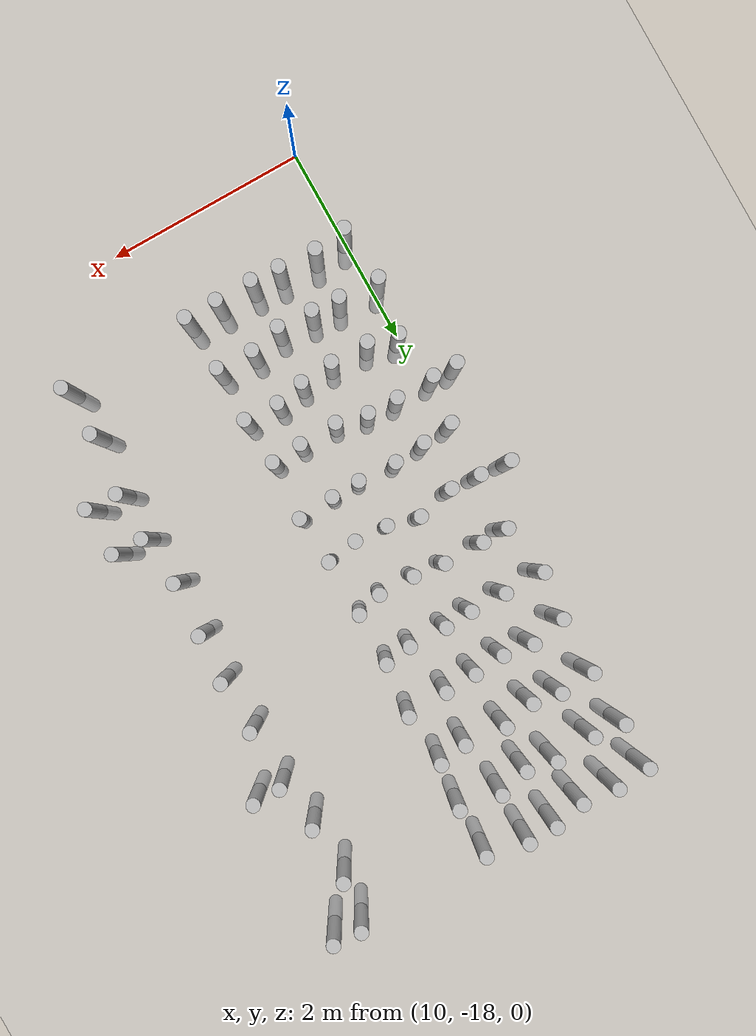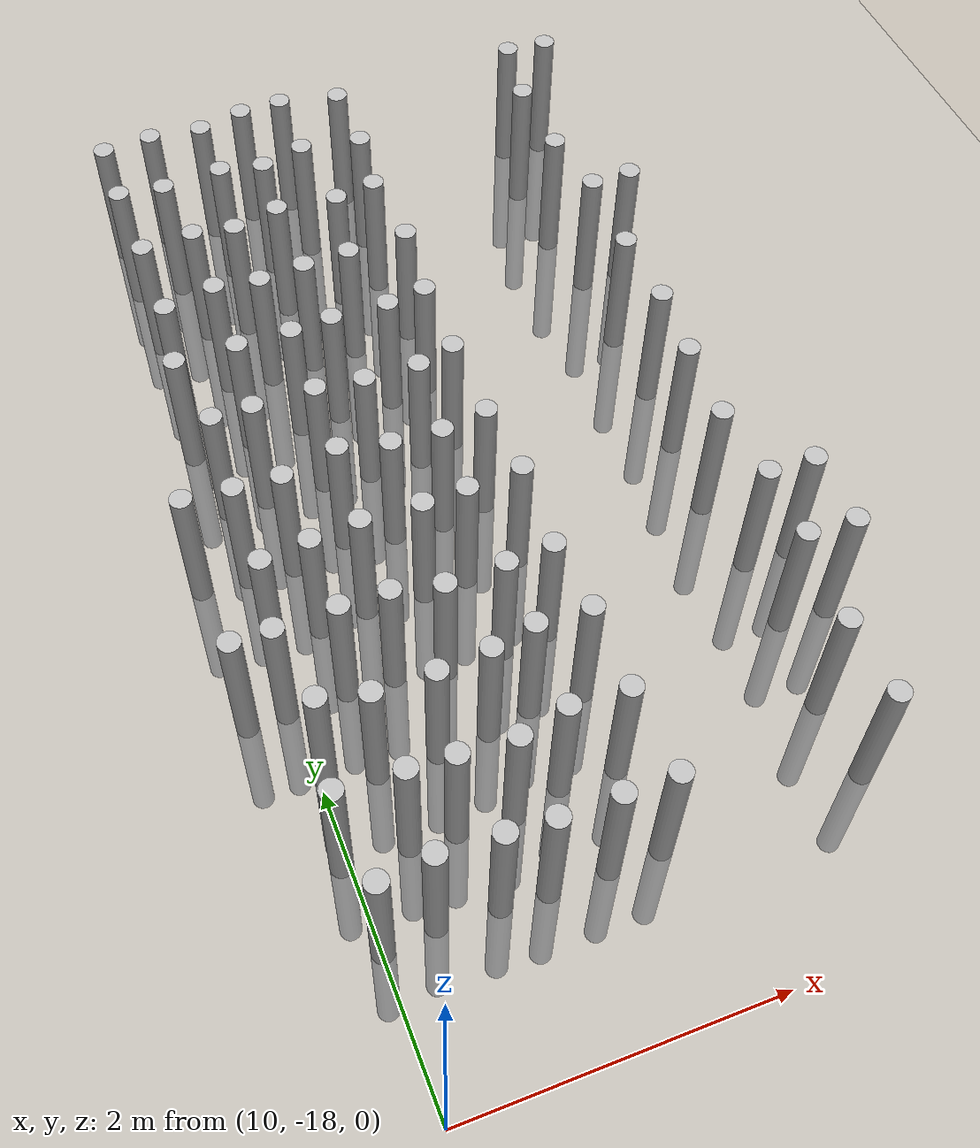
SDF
<sdf version="1.7">
 <world name="farmland_world">
  <model name="ground_plane">
   <static>1</static>
   <link name="link">
    <collision name="collision">
     <geometry><plane><normal>0 0 1</normal><size>40.0 40.0</size></plane></geometry>
     <surface><friction><ode><mu>100</mu><mu2>50</mu2></ode></friction></surface>
    </collision>
    <visual name="visual">
     <cast_shadows>0</cast_shadows>
     <geometry><plane><normal>0 0 1</normal><size>40.0 40.0</size></plane></geometry>
     <material>
      <script><uri>file://media/materials/scripts/gazebo.material</uri><name>Gazebo/Grey</name></script>
     </material>
    </visual>
   </link>
  </model>
  <model name="tree_3_444">
   <static>1</static>
   <link name="link">
    <collision name="collision">
     <geometry><cylinder><radius>0.07</radius><length>2.0</length></cylinder></geometry>
     <surface><friction><ode><mu>100</mu><mu2>50</mu2></ode></friction></surface>
    </collision>
    <visual name="visual">
     <geometry><cylinder><radius>0.07</radius><length>2.0</length></cylinder></geometry>
    </visual>
   </link>
   <pose>9.71806890942559 -14.407326169334242 0 0 0 0</pose>
  </model>
  <model name="tree_3_446">
   <static>1</static>
   <link name="link">
    <collision name="collision">
     <geometry><cylinder><radius>0.07</radius><length>2.0</length></cylinder></geometry>
     <surface><friction><ode><mu>100</mu><mu2>50</mu2></ode></friction></surface>
    </collision>
    <visual name="visual">
     <geometry><cylinder><radius>0.07</radius><length>2.0</length></cylinder></geometry>
    </visual>
   </link>
   <pose>9.711560196949451 -15.432783776333466 0 0 0 0</pose>
  </model>
  <model name="tree_3_468">
   <static>1</static>
   <link name="link">
    <collision name="collision">
     <geometry><cylinder><radius>0.07</radius><length>2.0</length></cylinder></geometry>
     <surface><friction><ode><mu>100</mu><mu2>50</mu2></ode></friction></surface>
    </collision>
    <visual name="visual">
     <geometry><cylinder><radius>0.07</radius><length>2.0</length></cylinder></geometry>
    </visual>
   </link>
   <pose>10.003537658752895 -11.329767096018102 0 0 0 0</pose>
  </model>
  <model name="tree_3_469">
   <static>1</static>
   <link name="link">
    <collision name="collision">
     <geometry><cylinder><radius>0.07</radius><length>2.0</length></cylinder></geometry>
     <surface><friction><ode><mu>100</mu><mu2>50</mu2></ode></friction></surface>
    </collision>
    <visual name="visual">
     <geometry><cylinder><radius>0.07</radius><length>2.0</length></cylinder></geometry>
    </visual>
   </link>
   <pose>9.995978710981182 -11.786096874504736 0 0 0 0</pose>
  </model>
  <model name="tree_3_470">
   <static>1</static>
   <link name="link">
    <collision name="collision">
     <geometry><cylinder><radius>0.07</radius><length>2.0</length></cylinder></geometry>
     <surface><friction><ode><mu>100</mu><mu2>50</mu2></ode></friction></surface>
    </collision>
    <visual name="visual">
     <geometry><cylinder><radius>0.07</radius><length>2.0</length></cylinder></geometry>
    </visual>
   </link>
   <pose>10.017082627979574 -12.339876255355179 0 0 0 0</pose>
  </model>
  <model name="tree_3_471">
   <static>1</static>
   <link name="link">
    <collision name="collision">
     <geometry><cylinder><radius>0.07</radius><length>2.0</length></cylinder></geometry>
     <surface><friction><ode><mu>100</mu><mu2>50</mu2></ode></friction></surface>
    </collision>
    <visual name="visual">
     <geometry><cylinder><radius>0.07</radius><length>2.0</length></cylinder></geometry>
    </visual>
   </link>
   <pose>10.01881479105558 -12.906315925940971 0 0 0 0</pose>
  </model>
  <model name="tree_3_472">
   <static>1</static>
   <link name="link">
    <collision name="collision">
     <geometry><cylinder><radius>0.07</radius><length>2.0</length></cylinder></geometry>
     <surface><friction><ode><mu>100</mu><mu2>50</mu2></ode></friction></surface>
    </collision>
    <visual name="visual">
     <geometry><cylinder><radius>0.07</radius><length>2.0</length></cylinder></geometry>
    </visual>
   </link>
   <pose>9.957768395754783 -13.364970226334474 0 0 0 0</pose>
  </model>
  <model name="tree_3_473">
   <static>1</static>
   <link name="link">
    <collision name="collision">
     <geometry><cylinder><radius>0.07</radius><length>2.0</length></cylinder></geometry>
     <surface><friction><ode><mu>100</mu><mu2>50</mu2></ode></friction></surface>
    </collision>
    <visual name="visual">
     <geometry><cylinder><radius>0.07</radius><length>2.0</length></cylinder></geometry>
    </visual>
   </link>
   <pose>10.049976861707478 -13.878623129617107 0 0 0 0</pose>
  </model>
  <model name="tree_3_474">
   <static>1</static>
   <link name="link">
    <collision name="collision">
     <geometry><cylinder><radius>0.07</radius><length>2.0</length></cylinder></geometry>
     <surface><friction><ode><mu>100</mu><mu2>50</mu2></ode></friction></surface>
    </collision>
    <visual name="visual">
     <geometry><cylinder><radius>0.07</radius><length>2.0</length></cylinder></geometry>
    </visual>
   </link>
   <pose>10.023209837327732 -14.431447521194377 0 0 0 0</pose>
  </model>
  <model name="tree_3_475">
   <static>1</static>
   <link name="link">
    <collision name="collision">
     <geometry><cylinder><radius>0.07</radius><length>2.0</length></cylinder></geometry>
     <surface><friction><ode><mu>100</mu><mu2>50</mu2></ode></friction></surface>
    </collision>
    <visual name="visual">
     <geometry><cylinder><radius>0.07</radius><length>2.0</length></cylinder></geometry>
    </visual>
   </link>
   <pose>10.025530881395827 -14.975288594109848 0 0 0 0</pose>
  </model>
  <model name="tree_3_476">
   <static>1</static>
   <link name="link">
    <collision name="collision">
     <geometry><cylinder><radius>0.07</radius><length>2.0</length></cylinder></geometry>
     <surface><friction><ode><mu>100</mu><mu2>50</mu2></ode></friction></surface>
    </collision>
    <visual name="visual">
     <geometry><cylinder><radius>0.07</radius><length>2.0</length></cylinder></geometry>
    </visual>
   </link>
   <pose>9.95917431258349 -15.431483574233019 0 0 0 0</pose>
  </model>
  <model name="tree_3_477">
   <static>1</static>
   <link name="link">
    <collision name="collision">
     <geometry><cylinder><radius>0.07</radius><length>2.0</length></cylinder></geometry>
     <surface><friction><ode><mu>100</mu><mu2>50</mu2></ode></friction></surface>
    </collision>
    <visual name="visual">
     <geometry><cylinder><radius>0.07</radius><length>2.0</length></cylinder></geometry>
    </visual>
   </link>
   <pose>10.04451284538513 -15.922026359931321 0 0 0 0</pose>
  </model>
  <model name="tree_3_478">
   <static>1</static>
   <link name="link">
    <collision name="collision">
     <geometry><cylinder><radius>0.07</radius><length>2.0</length></cylinder></geometry>
     <surface><friction><ode><mu>100</mu><mu2>50</mu2></ode></friction></surface>
    </collision>
    <visual name="visual">
     <geometry><cylinder><radius>0.07</radius><length>2.0</length></cylinder></geometry>
    </visual>
   </link>
   <pose>9.955804929519918 -16.46301985570231 0 0 0 0</pose>
  </model>
  <model name="tree_3_479">
   <static>1</static>
   <link name="link">
    <collision name="collision">
     <geometry><cylinder><radius>0.07</radius><length>2.0</length></cylinder></geometry>
     <surface><friction><ode><mu>100</mu><mu2>50</mu2></ode></friction></surface>
    </collision>
    <visual name="visual">
     <geometry><cylinder><radius>0.07</radius><length>2.0</length></cylinder></geometry>
    </visual>
   </link>
   <pose>10.009402851483868 -17.009246043800758 0 0 0 0</pose>
  </model>
  <model name="tree_3_498">
   <static>1</static>
   <link name="link">
    <collision name="collision">
     <geometry><cylinder><radius>0.07</radius><length>2.0</length></cylinder></geometry>
     <surface><friction><ode><mu>100</mu><mu2>50</mu2></ode></friction></surface>
    </collision>
    <visual name="visual">
     <geometry><cylinder><radius>0.07</radius><length>2.0</length></cylinder></geometry>
    </visual>
   </link>
   <pose>10.33894609648866 -11.302975191978183 0 0 0 0</pose>
  </model>
  <model name="tree_3_499">
   <static>1</static>
   <link name="link">
    <collision name="collision">
     <geometry><cylinder><radius>0.07</radius><length>2.0</length></cylinder></geometry>
     <surface><friction><ode><mu>100</mu><mu2>50</mu2></ode></friction></surface>
    </collision>
    <visual name="visual">
     <geometry><cylinder><radius>0.07</radius><length>2.0</length></cylinder></geometry>
    </visual>
   </link>
   <pose>10.297509967706294 -11.825122006668854 0 0 0 0</pose>
  </model>
  <model name="tree_3_500">
   <static>1</static>
   <link name="link">
    <collision name="collision">
     <geometry><cylinder><radius>0.07</radius><length>2.0</length></cylinder></geometry>
     <surface><friction><ode><mu>100</mu><mu2>50</mu2></ode></friction></surface>
    </collision>
    <visual name="visual">
     <geometry><cylinder><radius>0.07</radius><length>2.0</length></cylinder></geometry>
    </visual>
   </link>
   <pose>10.36316263589027 -12.321332924497236 0 0 0 0</pose>
  </model>
  <model name="tree_3_501">
   <static>1</static>
   <link name="link">
    <collision name="collision">
     <geometry><cylinder><radius>0.07</radius><length>2.0</length></cylinder></geometry>
     <surface><friction><ode><mu>100</mu><mu2>50</mu2></ode></friction></surface>
    </collision>
    <visual name="visual">
     <geometry><cylinder><radius>0.07</radius><length>2.0</length></cylinder></geometry>
    </visual>
   </link>
   <pose>10.363410427684398 -12.837710706759607 0 0 0 0</pose>
  </model>
  <model name="tree_3_502">
   <static>1</static>
   <link name="link">
    <collision name="collision">
     <geometry><cylinder><radius>0.07</radius><length>2.0</length></cylinder></geometry>
     <surface><friction><ode><mu>100</mu><mu2>50</mu2></ode></friction></surface>
    </collision>
    <visual name="visual">
     <geometry><cylinder><radius>0.07</radius><length>2.0</length></cylinder></geometry>
    </visual>
   </link>
   <pose>10.361540540127775 -13.370075875086394 0 0 0 0</pose>
  </model>
  <model name="tree_3_503">
   <static>1</static>
   <link name="link">
    <collision name="collision">
     <geometry><cylinder><radius>0.07</radius><length>2.0</length></cylinder></geometry>
     <surface><friction><ode><mu>100</mu><mu2>50</mu2></ode></friction></surface>
    </collision>
    <visual name="visual">
     <geometry><cylinder><radius>0.07</radius><length>2.0</length></cylinder></geometry>
    </visual>
   </link>
   <pose>10.31073996327706 -13.878181440496498 0 0 0 0</pose>
  </model>
  <model name="tree_3_504">
   <static>1</static>
   <link name="link">
    <collision name="collision">
     <geometry><cylinder><radius>0.07</radius><length>2.0</length></cylinder></geometry>
     <surface><friction><ode><mu>100</mu><mu2>50</mu2></ode></friction></surface>
    </collision>
    <visual name="visual">
     <geometry><cylinder><radius>0.07</radius><length>2.0</length></cylinder></geometry>
    </visual>
   </link>
   <pose>10.320666112820755 -14.449300493469073 0 0 0 0</pose>
  </model>
  <model name="tree_3_505">
   <static>1</static>
   <link name="link">
    <collision name="collision">
     <geometry><cylinder><radius>0.07</radius><length>2.0</length></cylinder></geometry>
     <surface><friction><ode><mu>100</mu><mu2>50</mu2></ode></friction></surface>
    </collision>
    <visual name="visual">
     <geometry><cylinder><radius>0.07</radius><length>2.0</length></cylinder></geometry>
    </visual>
   </link>
   <pose>10.333509514505277 -14.940274618923805 0 0 0 0</pose>
  </model>
  <model name="tree_3_506">
   <static>1</static>
   <link name="link">
    <collision name="collision">
     <geometry><cylinder><radius>0.07</radius><length>2.0</length></cylinder></geometry>
     <surface><friction><ode><mu>100</mu><mu2>50</mu2></ode></friction></surface>
    </collision>
    <visual name="visual">
     <geometry><cylinder><radius>0.07</radius><length>2.0</length></cylinder></geometry>
    </visual>
   </link>
   <pose>10.345513364410582 -15.419362076822324 0 0 0 0</pose>
  </model>
  <model name="tree_3_507">
   <static>1</static>
   <link name="link">
    <collision name="collision">
     <geometry><cylinder><radius>0.07</radius><length>2.0</length></cylinder></geometry>
     <surface><friction><ode><mu>100</mu><mu2>50</mu2></ode></friction></surface>
    </collision>
    <visual name="visual">
     <geometry><cylinder><radius>0.07</radius><length>2.0</length></cylinder></geometry>
    </visual>
   </link>
   <pose>10.3350017216774 -15.99816854349382 0 0 0 0</pose>
  </model>
  <model name="tree_3_508">
   <static>1</static>
   <link name="link">
    <collision name="collision">
     <geometry><cylinder><radius>0.07</radius><length>2.0</length></cylinder></geometry>
     <surface><friction><ode><mu>100</mu><mu2>50</mu2></ode></friction></surface>
    </collision>
    <visual name="visual">
     <geometry><cylinder><radius>0.07</radius><length>2.0</length></cylinder></geometry>
    </visual>
   </link>
   <pose>10.357720333693432 -16.484490871346463 0 0 0 0</pose>
  </model>
  <model name="tree_3_509">
   <static>1</static>
   <link name="link">
    <collision name="collision">
     <geometry><cylinder><radius>0.07</radius><length>2.0</length></cylinder></geometry>
     <surface><friction><ode><mu>100</mu><mu2>50</mu2></ode></friction></surface>
    </collision>
    <visual name="visual">
     <geometry><cylinder><radius>0.07</radius><length>2.0</length></cylinder></geometry>
    </visual>
   </link>
   <pose>10.333387708578263 -16.97504436359922 0 0 0 0</pose>
  </model>
  <model name="tree_3_528">
   <static>1</static>
   <link name="link">
    <collision name="collision">
     <geometry><cylinder><radius>0.07</radius><length>2.0</length></cylinder></geometry>
     <surface><friction><ode><mu>100</mu><mu2>50</mu2></ode></friction></surface>
    </collision>
    <visual name="visual">
     <geometry><cylinder><radius>0.07</radius><length>2.0</length></cylinder></geometry>
    </visual>
   </link>
   <pose>10.692143860619804 -11.343376843280295 0 0 0 0</pose>
  </model>
  <model name="tree_3_529">
   <static>1</static>
   <link name="link">
    <collision name="collision">
     <geometry><cylinder><radius>0.07</radius><length>2.0</length></cylinder></geometry>
     <surface><friction><ode><mu>100</mu><mu2>50</mu2></ode></friction></surface>
    </collision>
    <visual name="visual">
     <geometry><cylinder><radius>0.07</radius><length>2.0</length></cylinder></geometry>
    </visual>
   </link>
   <pose>10.704981614415079 -11.796466078481322 0 0 0 0</pose>
  </model>
  <model name="tree_3_530">
   <static>1</static>
   <link name="link">
    <collision name="collision">
     <geometry><cylinder><radius>0.07</radius><length>2.0</length></cylinder></geometry>
     <surface><friction><ode><mu>100</mu><mu2>50</mu2></ode></friction></surface>
    </collision>
    <visual name="visual">
     <geometry><cylinder><radius>0.07</radius><length>2.0</length></cylinder></geometry>
    </visual>
   </link>
   <pose>10.639592767230468 -12.368667238458682 0 0 0 0</pose>
  </model>
  <model name="tree_3_531">
   <static>1</static>
   <link name="link">
    <collision name="collision">
     <geometry><cylinder><radius>0.07</radius><length>2.0</length></cylinder></geometry>
     <surface><friction><ode><mu>100</mu><mu2>50</mu2></ode></friction></surface>
    </collision>
    <visual name="visual">
     <geometry><cylinder><radius>0.07</radius><length>2.0</length></cylinder></geometry>
    </visual>
   </link>
   <pose>10.65920712658359 -12.884964713417741 0 0 0 0</pose>
  </model>
  <model name="tree_3_532">
   <static>1</static>
   <link name="link">
    <collision name="collision">
     <geometry><cylinder><radius>0.07</radius><length>2.0</length></cylinder></geometry>
     <surface><friction><ode><mu>100</mu><mu2>50</mu2></ode></friction></surface>
    </collision>
    <visual name="visual">
     <geometry><cylinder><radius>0.07</radius><length>2.0</length></cylinder></geometry>
    </visual>
   </link>
   <pose>10.715561784467207 -13.379422154926198 0 0 0 0</pose>
  </model>
  <model name="tree_3_533">
   <static>1</static>
   <link name="link">
    <collision name="collision">
     <geometry><cylinder><radius>0.07</radius><length>2.0</length></cylinder></geometry>
     <surface><friction><ode><mu>100</mu><mu2>50</mu2></ode></friction></surface>
    </collision>
    <visual name="visual">
     <geometry><cylinder><radius>0.07</radius><length>2.0</length></cylinder></geometry>
    </visual>
   </link>
   <pose>10.71059425265956 -13.882163198829856 0 0 0 0</pose>
  </model>
  <model name="tree_3_534">
   <static>1</static>
   <link name="link">
    <collision name="collision">
     <geometry><cylinder><radius>0.07</radius><length>2.0</length></cylinder></geometry>
     <surface><friction><ode><mu>100</mu><mu2>50</mu2></ode></friction></surface>
    </collision>
    <visual name="visual">
     <geometry><cylinder><radius>0.07</radius><length>2.0</length></cylinder></geometry>
    </visual>
   </link>
   <pose>10.690863453017835 -14.365591385801753 0 0 0 0</pose>
  </model>
  <model name="tree_3_535">
   <static>1</static>
   <link name="link">
    <collision name="collision">
     <geometry><cylinder><radius>0.07</radius><length>2.0</length></cylinder></geometry>
     <surface><friction><ode><mu>100</mu><mu2>50</mu2></ode></friction></surface>
    </collision>
    <visual name="visual">
     <geometry><cylinder><radius>0.07</radius><length>2.0</length></cylinder></geometry>
    </visual>
   </link>
   <pose>10.647093178068982 -14.912311834139604 0 0 0 0</pose>
  </model>
  <model name="tree_3_536">
   <static>1</static>
   <link name="link">
    <collision name="collision">
     <geometry><cylinder><radius>0.07</radius><length>2.0</length></cylinder></geometry>
     <surface><friction><ode><mu>100</mu><mu2>50</mu2></ode></friction></surface>
    </collision>
    <visual name="visual">
     <geometry><cylinder><radius>0.07</radius><length>2.0</length></cylinder></geometry>
    </visual>
   </link>
   <pose>10.647662996774855 -15.427349942697706 0 0 0 0</pose>
  </model>
  <model name="tree_3_537">
   <static>1</static>
   <link name="link">
    <collision name="collision">
     <geometry><cylinder><radius>0.07</radius><length>2.0</length></cylinder></geometry>
     <surface><friction><ode><mu>100</mu><mu2>50</mu2></ode></friction></surface>
    </collision>
    <visual name="visual">
     <geometry><cylinder><radius>0.07</radius><length>2.0</length></cylinder></geometry>
    </visual>
   </link>
   <pose>10.71225038911826 -16.001081513195565 0 0 0 0</pose>
  </model>
  <model name="tree_3_538">
   <static>1</static>
   <link name="link">
    <collision name="collision">
     <geometry><cylinder><radius>0.07</radius><length>2.0</length></cylinder></geometry>
     <surface><friction><ode><mu>100</mu><mu2>50</mu2></ode></friction></surface>
    </collision>
    <visual name="visual">
     <geometry><cylinder><radius>0.07</radius><length>2.0</length></cylinder></geometry>
    </visual>
   </link>
   <pose>10.636111390177035 -16.50164192502147 0 0 0 0</pose>
  </model>
  <model name="tree_3_539">
   <static>1</static>
   <link name="link">
    <collision name="collision">
     <geometry><cylinder><radius>0.07</radius><length>2.0</length></cylinder></geometry>
     <surface><friction><ode><mu>100</mu><mu2>50</mu2></ode></friction></surface>
    </collision>
    <visual name="visual">
     <geometry><cylinder><radius>0.07</radius><length>2.0</length></cylinder></geometry>
    </visual>
   </link>
   <pose>10.70558739581658 -16.997373226770648 0 0 0 0</pose>
  </model>
  <model name="tree_3_558">
   <static>1</static>
   <link name="link">
    <collision name="collision">
     <geometry><cylinder><radius>0.07</radius><length>2.0</length></cylinder></geometry>
     <surface><friction><ode><mu>100</mu><mu2>50</mu2></ode></friction></surface>
    </collision>
    <visual name="visual">
     <geometry><cylinder><radius>0.07</radius><length>2.0</length></cylinder></geometry>
    </visual>
   </link>
   <pose>11.005011579467332 -11.277034669835407 0 0 0 0</pose>
  </model>
  <model name="tree_3_559">
   <static>1</static>
   <link name="link">
    <collision name="collision">
     <geometry><cylinder><radius>0.07</radius><length>2.0</length></cylinder></geometry>
     <surface><friction><ode><mu>100</mu><mu2>50</mu2></ode></friction></surface>
    </collision>
    <visual name="visual">
     <geometry><cylinder><radius>0.07</radius><length>2.0</length></cylinder></geometry>
    </visual>
   </link>
   <pose>10.994471073875985 -11.858710326046126 0 0 0 0</pose>
  </model>
  <model name="tree_3_560">
   <static>1</static>
   <link name="link">
    <collision name="collision">
     <geometry><cylinder><radius>0.07</radius><length>2.0</length></cylinder></geometry>
     <surface><friction><ode><mu>100</mu><mu2>50</mu2></ode></friction></surface>
    </collision>
    <visual name="visual">
     <geometry><cylinder><radius>0.07</radius><length>2.0</length></cylinder></geometry>
    </visual>
   </link>
   <pose>10.95728698454659 -12.297134483807497 0 0 0 0</pose>
  </model>
  <model name="tree_3_561">
   <static>1</static>
   <link name="link">
    <collision name="collision">
     <geometry><cylinder><radius>0.07</radius><length>2.0</length></cylinder></geometry>
     <surface><friction><ode><mu>100</mu><mu2>50</mu2></ode></friction></surface>
    </collision>
    <visual name="visual">
     <geometry><cylinder><radius>0.07</radius><length>2.0</length></cylinder></geometry>
    </visual>
   </link>
   <pose>10.965736558689766 -12.860132901302258 0 0 0 0</pose>
  </model>
  <model name="tree_3_562">
   <static>1</static>
   <link name="link">
    <collision name="collision">
     <geometry><cylinder><radius>0.07</radius><length>2.0</length></cylinder></geometry>
     <surface><friction><ode><mu>100</mu><mu2>50</mu2></ode></friction></surface>
    </collision>
    <visual name="visual">
     <geometry><cylinder><radius>0.07</radius><length>2.0</length></cylinder></geometry>
    </visual>
   </link>
   <pose>10.989582054602819 -13.364794641667885 0 0 0 0</pose>
  </model>
  <model name="tree_3_563">
   <static>1</static>
   <link name="link">
    <collision name="collision">
     <geometry><cylinder><radius>0.07</radius><length>2.0</length></cylinder></geometry>
     <surface><friction><ode><mu>100</mu><mu2>50</mu2></ode></friction></surface>
    </collision>
    <visual name="visual">
     <geometry><cylinder><radius>0.07</radius><length>2.0</length></cylinder></geometry>
    </visual>
   </link>
   <pose>11.019358227731521 -13.918821271614494 0 0 0 0</pose>
  </model>
  <model name="tree_3_564">
   <static>1</static>
   <link name="link">
    <collision name="collision">
     <geometry><cylinder><radius>0.07</radius><length>2.0</length></cylinder></geometry>
     <surface><friction><ode><mu>100</mu><mu2>50</mu2></ode></friction></surface>
    </collision>
    <visual name="visual">
     <geometry><cylinder><radius>0.07</radius><length>2.0</length></cylinder></geometry>
    </visual>
   </link>
   <pose>11.003810530527682 -14.444015005019848 0 0 0 0</pose>
  </model>
  <model name="tree_3_565">
   <static>1</static>
   <link name="link">
    <collision name="collision">
     <geometry><cylinder><radius>0.07</radius><length>2.0</length></cylinder></geometry>
     <surface><friction><ode><mu>100</mu><mu2>50</mu2></ode></friction></surface>
    </collision>
    <visual name="visual">
     <geometry><cylinder><radius>0.07</radius><length>2.0</length></cylinder></geometry>
    </visual>
   </link>
   <pose>11.027707341219726 -14.92967870040211 0 0 0 0</pose>
  </model>
  <model name="tree_3_566">
   <static>1</static>
   <link name="link">
    <collision name="collision">
     <geometry><cylinder><radius>0.07</radius><length>2.0</length></cylinder></geometry>
     <surface><friction><ode><mu>100</mu><mu2>50</mu2></ode></friction></surface>
    </collision>
    <visual name="visual">
     <geometry><cylinder><radius>0.07</radius><length>2.0</length></cylinder></geometry>
    </visual>
   </link>
   <pose>10.95265995664397 -15.497698664471491 0 0 0 0</pose>
  </model>
  <model name="tree_3_567">
   <static>1</static>
   <link name="link">
    <collision name="collision">
     <geometry><cylinder><radius>0.07</radius><length>2.0</length></cylinder></geometry>
     <surface><friction><ode><mu>100</mu><mu2>50</mu2></ode></friction></surface>
    </collision>
    <visual name="visual">
     <geometry><cylinder><radius>0.07</radius><length>2.0</length></cylinder></geometry>
    </visual>
   </link>
   <pose>11.042581364533316 -15.974074273138854 0 0 0 0</pose>
  </model>
  <model name="tree_3_568">
   <static>1</static>
   <link name="link">
    <collision name="collision">
     <geometry><cylinder><radius>0.07</radius><length>2.0</length></cylinder></geometry>
     <surface><friction><ode><mu>100</mu><mu2>50</mu2></ode></friction></surface>
    </collision>
    <visual name="visual">
     <geometry><cylinder><radius>0.07</radius><length>2.0</length></cylinder></geometry>
    </visual>
   </link>
   <pose>10.9822751694263 -16.522949357676858 0 0 0 0</pose>
  </model>
  <model name="tree_3_569">
   <static>1</static>
   <link name="link">
    <collision name="collision">
     <geometry><cylinder><radius>0.07</radius><length>2.0</length></cylinder></geometry>
     <surface><friction><ode><mu>100</mu><mu2>50</mu2></ode></friction></surface>
    </collision>
    <visual name="visual">
     <geometry><cylinder><radius>0.07</radius><length>2.0</length></cylinder></geometry>
    </visual>
   </link>
   <pose>10.988579755175136 -17.015477465941874 0 0 0 0</pose>
  </model>
  <model name="tree_3_588">
   <static>1</static>
   <link name="link">
    <collision name="collision">
     <geometry><cylinder><radius>0.07</radius><length>2.0</length></cylinder></geometry>
     <surface><friction><ode><mu>100</mu><mu2>50</mu2></ode></friction></surface>
    </collision>
    <visual name="visual">
     <geometry><cylinder><radius>0.07</radius><length>2.0</length></cylinder></geometry>
    </visual>
   </link>
   <pose>11.296707561779332 -11.270999628375797 0 0 0 0</pose>
  </model>
  <model name="tree_3_589">
   <static>1</static>
   <link name="link">
    <collision name="collision">
     <geometry><cylinder><radius>0.07</radius><length>2.0</length></cylinder></geometry>
     <surface><friction><ode><mu>100</mu><mu2>50</mu2></ode></friction></surface>
    </collision>
    <visual name="visual">
     <geometry><cylinder><radius>0.07</radius><length>2.0</length></cylinder></geometry>
    </visual>
   </link>
   <pose>11.296957553454462 -11.780775473879869 0 0 0 0</pose>
  </model>
  <model name="tree_3_590">
   <static>1</static>
   <link name="link">
    <collision name="collision">
     <geometry><cylinder><radius>0.07</radius><length>2.0</length></cylinder></geometry>
     <surface><friction><ode><mu>100</mu><mu2>50</mu2></ode></friction></surface>
    </collision>
    <visual name="visual">
     <geometry><cylinder><radius>0.07</radius><length>2.0</length></cylinder></geometry>
    </visual>
   </link>
   <pose>11.365985374216772 -12.34242567637569 0 0 0 0</pose>
  </model>
  <model name="tree_3_591">
   <static>1</static>
   <link name="link">
    <collision name="collision">
     <geometry><cylinder><radius>0.07</radius><length>2.0</length></cylinder></geometry>
     <surface><friction><ode><mu>100</mu><mu2>50</mu2></ode></friction></surface>
    </collision>
    <visual name="visual">
     <geometry><cylinder><radius>0.07</radius><length>2.0</length></cylinder></geometry>
    </visual>
   </link>
   <pose>11.280061565079837 -12.848478541270062 0 0 0 0</pose>
  </model>
  <model name="tree_3_592">
   <static>1</static>
   <link name="link">
    <collision name="collision">
     <geometry><cylinder><radius>0.07</radius><length>2.0</length></cylinder></geometry>
     <surface><friction><ode><mu>100</mu><mu2>50</mu2></ode></friction></surface>
    </collision>
    <visual name="visual">
     <geometry><cylinder><radius>0.07</radius><length>2.0</length></cylinder></geometry>
    </visual>
   </link>
   <pose>11.36518487310547 -13.376716975619027 0 0 0 0</pose>
  </model>
  <model name="tree_3_593">
   <static>1</static>
   <link name="link">
    <collision name="collision">
     <geometry><cylinder><radius>0.07</radius><length>2.0</length></cylinder></geometry>
     <surface><friction><ode><mu>100</mu><mu2>50</mu2></ode></friction></surface>
    </collision>
    <visual name="visual">
     <geometry><cylinder><radius>0.07</radius><length>2.0</length></cylinder></geometry>
    </visual>
   </link>
   <pose>11.37397127521053 -13.928010546993216 0 0 0 0</pose>
  </model>
  <model name="tree_3_594">
   <static>1</static>
   <link name="link">
    <collision name="collision">
     <geometry><cylinder><radius>0.07</radius><length>2.0</length></cylinder></geometry>
     <surface><friction><ode><mu>100</mu><mu2>50</mu2></ode></friction></surface>
    </collision>
    <visual name="visual">
     <geometry><cylinder><radius>0.07</radius><length>2.0</length></cylinder></geometry>
    </visual>
   </link>
   <pose>11.328032152201374 -14.463228702270577 0 0 0 0</pose>
  </model>
  <model name="tree_3_595">
   <static>1</static>
   <link name="link">
    <collision name="collision">
     <geometry><cylinder><radius>0.07</radius><length>2.0</length></cylinder></geometry>
     <surface><friction><ode><mu>100</mu><mu2>50</mu2></ode></friction></surface>
    </collision>
    <visual name="visual">
     <geometry><cylinder><radius>0.07</radius><length>2.0</length></cylinder></geometry>
    </visual>
   </link>
   <pose>11.31114043287466 -14.919878031237578 0 0 0 0</pose>
  </model>
  <model name="tree_3_596">
   <static>1</static>
   <link name="link">
    <collision name="collision">
     <geometry><cylinder><radius>0.07</radius><length>2.0</length></cylinder></geometry>
     <surface><friction><ode><mu>100</mu><mu2>50</mu2></ode></friction></surface>
    </collision>
    <visual name="visual">
     <geometry><cylinder><radius>0.07</radius><length>2.0</length></cylinder></geometry>
    </visual>
   </link>
   <pose>11.328934337613376 -15.486590894100225 0 0 0 0</pose>
  </model>
  <model name="tree_3_597">
   <static>1</static>
   <link name="link">
    <collision name="collision">
     <geometry><cylinder><radius>0.07</radius><length>2.0</length></cylinder></geometry>
     <surface><friction><ode><mu>100</mu><mu2>50</mu2></ode></friction></surface>
    </collision>
    <visual name="visual">
     <geometry><cylinder><radius>0.07</radius><length>2.0</length></cylinder></geometry>
    </visual>
   </link>
   <pose>11.328254337033492 -15.916650451146417 0 0 0 0</pose>
  </model>
  <model name="tree_3_598">
   <static>1</static>
   <link name="link">
    <collision name="collision">
     <geometry><cylinder><radius>0.07</radius><length>2.0</length></cylinder></geometry>
     <surface><friction><ode><mu>100</mu><mu2>50</mu2></ode></friction></surface>
    </collision>
    <visual name="visual">
     <geometry><cylinder><radius>0.07</radius><length>2.0</length></cylinder></geometry>
    </visual>
   </link>
   <pose>11.294589966115952 -16.44970002782118 0 0 0 0</pose>
  </model>
  <model name="tree_3_599">
   <static>1</static>
   <link name="link">
    <collision name="collision">
     <geometry><cylinder><radius>0.07</radius><length>2.0</length></cylinder></geometry>
     <surface><friction><ode><mu>100</mu><mu2>50</mu2></ode></friction></surface>
    </collision>
    <visual name="visual">
     <geometry><cylinder><radius>0.07</radius><length>2.0</length></cylinder></geometry>
    </visual>
   </link>
   <pose>11.35644783791954 -17.013995820862664 0 0 0 0</pose>
  </model>
  <model name="tree_3_618">
   <static>1</static>
   <link name="link">
    <collision name="collision">
     <geometry><cylinder><radius>0.07</radius><length>2.0</length></cylinder></geometry>
     <surface><friction><ode><mu>100</mu><mu2>50</mu2></ode></friction></surface>
    </collision>
    <visual name="visual">
     <geometry><cylinder><radius>0.07</radius><length>2.0</length></cylinder></geometry>
    </visual>
   </link>
   <pose>11.70136772532035 -11.357977981728155 0 0 0 0</pose>
  </model>
  <model name="tree_3_619">
   <static>1</static>
   <link name="link">
    <collision name="collision">
     <geometry><cylinder><radius>0.07</radius><length>2.0</length></cylinder></geometry>
     <surface><friction><ode><mu>100</mu><mu2>50</mu2></ode></friction></surface>
    </collision>
    <visual name="visual">
     <geometry><cylinder><radius>0.07</radius><length>2.0</length></cylinder></geometry>
    </visual>
   </link>
   <pose>11.70365365036708 -11.849522460249858 0 0 0 0</pose>
  </model>
  <model name="tree_3_620">
   <static>1</static>
   <link name="link">
    <collision name="collision">
     <geometry><cylinder><radius>0.07</radius><length>2.0</length></cylinder></geometry>
     <surface><friction><ode><mu>100</mu><mu2>50</mu2></ode></friction></surface>
    </collision>
    <visual name="visual">
     <geometry><cylinder><radius>0.07</radius><length>2.0</length></cylinder></geometry>
    </visual>
   </link>
   <pose>11.646074074129118 -12.297203825699164 0 0 0 0</pose>
  </model>
  <model name="tree_3_621">
   <static>1</static>
   <link name="link">
    <collision name="collision">
     <geometry><cylinder><radius>0.07</radius><length>2.0</length></cylinder></geometry>
     <surface><friction><ode><mu>100</mu><mu2>50</mu2></ode></friction></surface>
    </collision>
    <visual name="visual">
     <geometry><cylinder><radius>0.07</radius><length>2.0</length></cylinder></geometry>
    </visual>
   </link>
   <pose>11.68939366303341 -12.823168000399093 0 0 0 0</pose>
  </model>
  <model name="tree_3_622">
   <static>1</static>
   <link name="link">
    <collision name="collision">
     <geometry><cylinder><radius>0.07</radius><length>2.0</length></cylinder></geometry>
     <surface><friction><ode><mu>100</mu><mu2>50</mu2></ode></friction></surface>
    </collision>
    <visual name="visual">
     <geometry><cylinder><radius>0.07</radius><length>2.0</length></cylinder></geometry>
    </visual>
   </link>
   <pose>11.630338731453984 -13.340584171402128 0 0 0 0</pose>
  </model>
  <model name="tree_3_623">
   <static>1</static>
   <link name="link">
    <collision name="collision">
     <geometry><cylinder><radius>0.07</radius><length>2.0</length></cylinder></geometry>
     <surface><friction><ode><mu>100</mu><mu2>50</mu2></ode></friction></surface>
    </collision>
    <visual name="visual">
     <geometry><cylinder><radius>0.07</radius><length>2.0</length></cylinder></geometry>
    </visual>
   </link>
   <pose>11.625813535918331 -13.859288951279702 0 0 0 0</pose>
  </model>
  <model name="tree_3_624">
   <static>1</static>
   <link name="link">
    <collision name="collision">
     <geometry><cylinder><radius>0.07</radius><length>2.0</length></cylinder></geometry>
     <surface><friction><ode><mu>100</mu><mu2>50</mu2></ode></friction></surface>
    </collision>
    <visual name="visual">
     <geometry><cylinder><radius>0.07</radius><length>2.0</length></cylinder></geometry>
    </visual>
   </link>
   <pose>11.63128606904177 -14.416234778266794 0 0 0 0</pose>
  </model>
  <model name="tree_3_625">
   <static>1</static>
   <link name="link">
    <collision name="collision">
     <geometry><cylinder><radius>0.07</radius><length>2.0</length></cylinder></geometry>
     <surface><friction><ode><mu>100</mu><mu2>50</mu2></ode></friction></surface>
    </collision>
    <visual name="visual">
     <geometry><cylinder><radius>0.07</radius><length>2.0</length></cylinder></geometry>
    </visual>
   </link>
   <pose>11.670006862330492 -14.894027917316224 0 0 0 0</pose>
  </model>
  <model name="tree_3_626">
   <static>1</static>
   <link name="link">
    <collision name="collision">
     <geometry><cylinder><radius>0.07</radius><length>2.0</length></cylinder></geometry>
     <surface><friction><ode><mu>100</mu><mu2>50</mu2></ode></friction></surface>
    </collision>
    <visual name="visual">
     <geometry><cylinder><radius>0.07</radius><length>2.0</length></cylinder></geometry>
    </visual>
   </link>
   <pose>11.631081840452303 -15.464885233189921 0 0 0 0</pose>
  </model>
  <model name="tree_3_627">
   <static>1</static>
   <link name="link">
    <collision name="collision">
     <geometry><cylinder><radius>0.07</radius><length>2.0</length></cylinder></geometry>
     <surface><friction><ode><mu>100</mu><mu2>50</mu2></ode></friction></surface>
    </collision>
    <visual name="visual">
     <geometry><cylinder><radius>0.07</radius><length>2.0</length></cylinder></geometry>
    </visual>
   </link>
   <pose>11.66646615388793 -15.930641543657828 0 0 0 0</pose>
  </model>
  <model name="tree_3_628">
   <static>1</static>
   <link name="link">
    <collision name="collision">
     <geometry><cylinder><radius>0.07</radius><length>2.0</length></cylinder></geometry>
     <surface><friction><ode><mu>100</mu><mu2>50</mu2></ode></friction></surface>
    </collision>
    <visual name="visual">
     <geometry><cylinder><radius>0.07</radius><length>2.0</length></cylinder></geometry>
    </visual>
   </link>
   <pose>11.654507257841576 -16.466837993142924 0 0 0 0</pose>
  </model>
  <model name="tree_3_629">
   <static>1</static>
   <link name="link">
    <collision name="collision">
     <geometry><cylinder><radius>0.07</radius><length>2.0</length></cylinder></geometry>
     <surface><friction><ode><mu>100</mu><mu2>50</mu2></ode></friction></surface>
    </collision>
    <visual name="visual">
     <geometry><cylinder><radius>0.07</radius><length>2.0</length></cylinder></geometry>
    </visual>
   </link>
   <pose>11.681763437442884 -17.01412881908644 0 0 0 0</pose>
  </model>
  <model name="tree_3_648">
   <static>1</static>
   <link name="link">
    <collision name="collision">
     <geometry><cylinder><radius>0.07</radius><length>2.0</length></cylinder></geometry>
     <surface><friction><ode><mu>100</mu><mu2>50</mu2></ode></friction></surface>
    </collision>
    <visual name="visual">
     <geometry><cylinder><radius>0.07</radius><length>2.0</length></cylinder></geometry>
    </visual>
   </link>
   <pose>13.03694257336003 -11.321946059924976 0 0 0 0</pose>
  </model>
  <model name="tree_3_649">
   <static>1</static>
   <link name="link">
    <collision name="collision">
     <geometry><cylinder><radius>0.07</radius><length>2.0</length></cylinder></geometry>
     <surface><friction><ode><mu>100</mu><mu2>50</mu2></ode></friction></surface>
    </collision>
    <visual name="visual">
     <geometry><cylinder><radius>0.07</radius><length>2.0</length></cylinder></geometry>
    </visual>
   </link>
   <pose>12.958388109273288 -11.793354889167098 0 0 0 0</pose>
  </model>
  <model name="tree_3_650">
   <static>1</static>
   <link name="link">
    <collision name="collision">
     <geometry><cylinder><radius>0.07</radius><length>2.0</length></cylinder></geometry>
     <surface><friction><ode><mu>100</mu><mu2>50</mu2></ode></friction></surface>
    </collision>
    <visual name="visual">
     <geometry><cylinder><radius>0.07</radius><length>2.0</length></cylinder></geometry>
    </visual>
   </link>
   <pose>12.96849986241604 -12.358857590081554 0 0 0 0</pose>
  </model>
  <model name="tree_3_651">
   <static>1</static>
   <link name="link">
    <collision name="collision">
     <geometry><cylinder><radius>0.07</radius><length>2.0</length></cylinder></geometry>
     <surface><friction><ode><mu>100</mu><mu2>50</mu2></ode></friction></surface>
    </collision>
    <visual name="visual">
     <geometry><cylinder><radius>0.07</radius><length>2.0</length></cylinder></geometry>
    </visual>
   </link>
   <pose>13.046656596064786 -12.829320673623544 0 0 0 0</pose>
  </model>
  <model name="tree_3_652">
   <static>1</static>
   <link name="link">
    <collision name="collision">
     <geometry><cylinder><radius>0.07</radius><length>2.0</length></cylinder></geometry>
     <surface><friction><ode><mu>100</mu><mu2>50</mu2></ode></friction></surface>
    </collision>
    <visual name="visual">
     <geometry><cylinder><radius>0.07</radius><length>2.0</length></cylinder></geometry>
    </visual>
   </link>
   <pose>13.028039392993161 -13.412868692395131 0 0 0 0</pose>
  </model>
  <model name="tree_3_653">
   <static>1</static>
   <link name="link">
    <collision name="collision">
     <geometry><cylinder><radius>0.07</radius><length>2.0</length></cylinder></geometry>
     <surface><friction><ode><mu>100</mu><mu2>50</mu2></ode></friction></surface>
    </collision>
    <visual name="visual">
     <geometry><cylinder><radius>0.07</radius><length>2.0</length></cylinder></geometry>
    </visual>
   </link>
   <pose>13.040828458037078 -13.935444861071444 0 0 0 0</pose>
  </model>
  <model name="tree_3_654">
   <static>1</static>
   <link name="link">
    <collision name="collision">
     <geometry><cylinder><radius>0.07</radius><length>2.0</length></cylinder></geometry>
     <surface><friction><ode><mu>100</mu><mu2>50</mu2></ode></friction></surface>
    </collision>
    <visual name="visual">
     <geometry><cylinder><radius>0.07</radius><length>2.0</length></cylinder></geometry>
    </visual>
   </link>
   <pose>13.002619981502553 -14.413267643280376 0 0 0 0</pose>
  </model>
  <model name="tree_3_655">
   <static>1</static>
   <link name="link">
    <collision name="collision">
     <geometry><cylinder><radius>0.07</radius><length>2.0</length></cylinder></geometry>
     <surface><friction><ode><mu>100</mu><mu2>50</mu2></ode></friction></surface>
    </collision>
    <visual name="visual">
     <geometry><cylinder><radius>0.07</radius><length>2.0</length></cylinder></geometry>
    </visual>
   </link>
   <pose>12.966872951474278 -14.944871980185916 0 0 0 0</pose>
  </model>
  <model name="tree_3_656">
   <static>1</static>
   <link name="link">
    <collision name="collision">
     <geometry><cylinder><radius>0.07</radius><length>2.0</length></cylinder></geometry>
     <surface><friction><ode><mu>100</mu><mu2>50</mu2></ode></friction></surface>
    </collision>
    <visual name="visual">
     <geometry><cylinder><radius>0.07</radius><length>2.0</length></cylinder></geometry>
    </visual>
   </link>
   <pose>13.022440523141103 -15.444841116173086 0 0 0 0</pose>
  </model>
  <model name="tree_3_657">
   <static>1</static>
   <link name="link">
    <collision name="collision">
     <geometry><cylinder><radius>0.07</radius><length>2.0</length></cylinder></geometry>
     <surface><friction><ode><mu>100</mu><mu2>50</mu2></ode></friction></surface>
    </collision>
    <visual name="visual">
     <geometry><cylinder><radius>0.07</radius><length>2.0</length></cylinder></geometry>
    </visual>
   </link>
   <pose>13.02289762703557 -15.917171495665047 0 0 0 0</pose>
  </model>
  <model name="tree_3_658">
   <static>1</static>
   <link name="link">
    <collision name="collision">
     <geometry><cylinder><radius>0.07</radius><length>2.0</length></cylinder></geometry>
     <surface><friction><ode><mu>100</mu><mu2>50</mu2></ode></friction></surface>
    </collision>
    <visual name="visual">
     <geometry><cylinder><radius>0.07</radius><length>2.0</length></cylinder></geometry>
    </visual>
   </link>
   <pose>12.957967514159911 -16.512820901867148 0 0 0 0</pose>
  </model>
  <model name="tree_3_659">
   <static>1</static>
   <link name="link">
    <collision name="collision">
     <geometry><cylinder><radius>0.07</radius><length>2.0</length></cylinder></geometry>
     <surface><friction><ode><mu>100</mu><mu2>50</mu2></ode></friction></surface>
    </collision>
    <visual name="visual">
     <geometry><cylinder><radius>0.07</radius><length>2.0</length></cylinder></geometry>
    </visual>
   </link>
   <pose>12.979065602812536 -17.0086542695481 0 0 0 0</pose>
  </model>
  <model name="tree_3_678">
   <static>1</static>
   <link name="link">
    <collision name="collision">
     <geometry><cylinder><radius>0.07</radius><length>2.0</length></cylinder></geometry>
     <surface><friction><ode><mu>100</mu><mu2>50</mu2></ode></friction></surface>
    </collision>
    <visual name="visual">
     <geometry><cylinder><radius>0.07</radius><length>2.0</length></cylinder></geometry>
    </visual>
   </link>
   <pose>13.318918275630017 -11.343002857207836 0 0 0 0</pose>
  </model>
  <model name="tree_3_681">
   <static>1</static>
   <link name="link">
    <collision name="collision">
     <geometry><cylinder><radius>0.07</radius><length>2.0</length></cylinder></geometry>
     <surface><friction><ode><mu>100</mu><mu2>50</mu2></ode></friction></surface>
    </collision>
    <visual name="visual">
     <geometry><cylinder><radius>0.07</radius><length>2.0</length></cylinder></geometry>
    </visual>
   </link>
   <pose>13.325930798085334 -12.821628637894367 0 0 0 0</pose>
  </model>
  <model name="tree_3_686">
   <static>1</static>
   <link name="link">
    <collision name="collision">
     <geometry><cylinder><radius>0.07</radius><length>2.0</length></cylinder></geometry>
     <surface><friction><ode><mu>100</mu><mu2>50</mu2></ode></friction></surface>
    </collision>
    <visual name="visual">
     <geometry><cylinder><radius>0.07</radius><length>2.0</length></cylinder></geometry>
    </visual>
   </link>
   <pose>13.326011356557638 -15.45449232590721 0 0 0 0</pose>
  </model>
  <model name="tree_3_687">
   <static>1</static>
   <link name="link">
    <collision name="collision">
     <geometry><cylinder><radius>0.07</radius><length>2.0</length></cylinder></geometry>
     <surface><friction><ode><mu>100</mu><mu2>50</mu2></ode></friction></surface>
    </collision>
    <visual name="visual">
     <geometry><cylinder><radius>0.07</radius><length>2.0</length></cylinder></geometry>
    </visual>
   </link>
   <pose>13.336619846474088 -15.932849853291284 0 0 0 0</pose>
  </model>
 </world>
</sdf>
